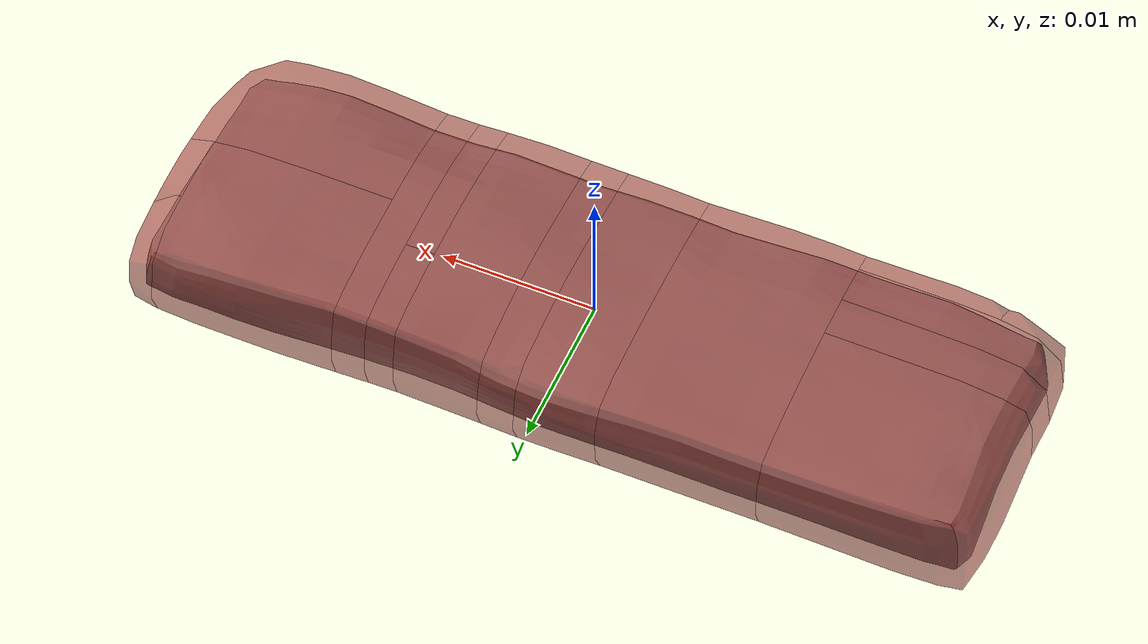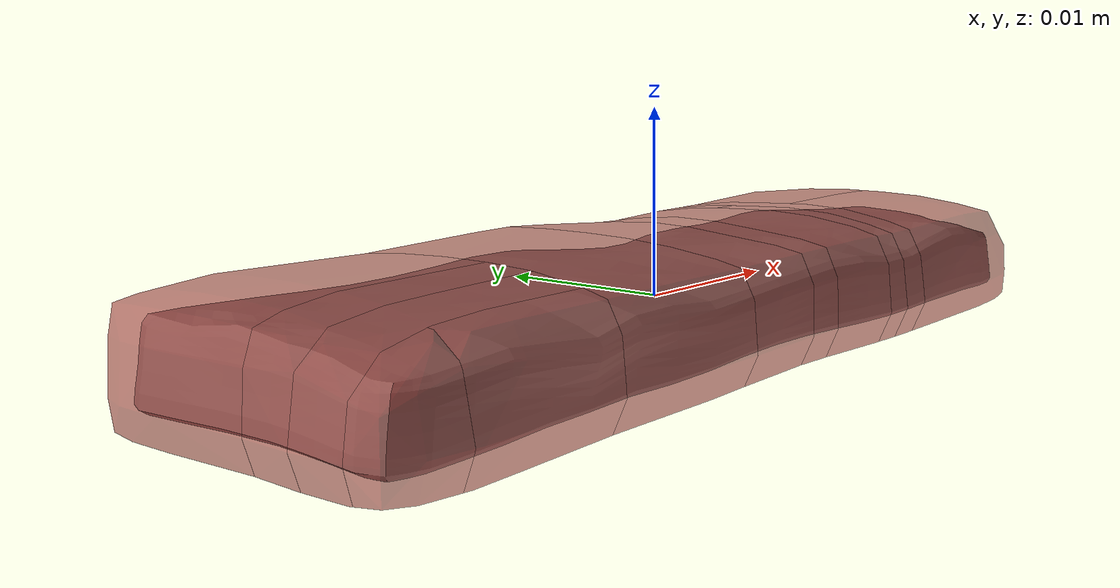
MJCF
<mujoco model="model">
  <compiler angle="radian"/>
  <asset>
    <mesh file="visual/CreamCheese007.obj" name="CreamCheese007_vis"/>
    <texture file="visual/T_BC001.png" name="CreamCheese007_material" type="2d"/>
    <material name="CreamCheese007_material" rgba="1 1 1 1.0" texture="CreamCheese007_material" shininess="-35.000003814697266" specular="0.3103448502657381"/>
    <mesh file="collision/CreamCheese007003.obj" name="CreamCheese007003_mesh"/>
    <mesh file="collision/CreamCheese007008.obj" name="CreamCheese007008_mesh"/>
    <mesh file="collision/CreamCheese007013.obj" name="CreamCheese007013_mesh"/>
    <mesh file="collision/CreamCheese007009.obj" name="CreamCheese007009_mesh"/>
    <mesh file="collision/CreamCheese007014.obj" name="CreamCheese007014_mesh"/>
    <mesh file="collision/CreamCheese007015.obj" name="CreamCheese007015_mesh"/>
    <mesh file="collision/CreamCheese007004.obj" name="CreamCheese007004_mesh"/>
    <mesh file="collision/CreamCheese007001.obj" name="CreamCheese007001_mesh"/>
    <mesh file="collision/CreamCheese007007.obj" name="CreamCheese007007_mesh"/>
    <mesh file="collision/CreamCheese007002.obj" name="CreamCheese007002_mesh"/>
    <mesh file="collision/CreamCheese007012.obj" name="CreamCheese007012_mesh"/>
    <mesh file="collision/CreamCheese007016.obj" name="CreamCheese007016_mesh"/>
    <mesh file="collision/CreamCheese007005.obj" name="CreamCheese007005_mesh"/>
    <mesh file="collision/CreamCheese007006.obj" name="CreamCheese007006_mesh"/>
    <mesh file="collision/CreamCheese007010.obj" name="CreamCheese007010_mesh"/>
    <mesh file="collision/CreamCheese007011.obj" name="CreamCheese007011_mesh"/>
  </asset>
  <default>
    <default class="visual">
      <geom conaffinity="0" contype="0" group="1" type="mesh"/>
    </default>
    <default class="collision">
      <geom group="0" rgba="0.5 0 0 0.5"/>
    </default>
    <default class="spawn">
      <geom group="0" rgba="1 1 1 0.5" contype="0" conaffinity="0"/>
      <site group="0" rgba="1 1 1 0.5"/>
    </default>
    <default class="region">
      <geom group="1" conaffinity="0" contype="0" rgba="0 1 0 0" mass="0"/>
    </default>
  </default>
  <worldbody>
    <body>
      <body name="object">
        <geom mesh="CreamCheese007_vis" type="mesh" solimp="0.998 0.998 0.001" solref="0.001 1" density="100" friction="0.95 0.3 0.1" class="visual" material="CreamCheese007_material"/>
        <geom mesh="CreamCheese007003_mesh" type="mesh" class="collision"/>
        <geom mesh="CreamCheese007008_mesh" type="mesh" class="collision"/>
        <geom mesh="CreamCheese007013_mesh" type="mesh" class="collision"/>
        <geom mesh="CreamCheese007009_mesh" type="mesh" class="collision"/>
        <geom mesh="CreamCheese007014_mesh" type="mesh" class="collision"/>
        <geom mesh="CreamCheese007015_mesh" type="mesh" class="collision"/>
        <geom mesh="CreamCheese007004_mesh" type="mesh" class="collision"/>
        <geom mesh="CreamCheese007001_mesh" type="mesh" class="collision"/>
        <geom mesh="CreamCheese007007_mesh" type="mesh" class="collision"/>
        <geom mesh="CreamCheese007002_mesh" type="mesh" class="collision"/>
        <geom mesh="CreamCheese007012_mesh" type="mesh" class="collision"/>
        <geom mesh="CreamCheese007016_mesh" type="mesh" class="collision"/>
        <geom mesh="CreamCheese007005_mesh" type="mesh" class="collision"/>
        <geom mesh="CreamCheese007006_mesh" type="mesh" class="collision"/>
        <geom mesh="CreamCheese007010_mesh" type="mesh" class="collision"/>
        <geom mesh="CreamCheese007011_mesh" type="mesh" class="collision"/>
        <geom class="region" name="reg_bbox" type="box" pos="-1.2210000000000346e-05 1.9954999999999452e-05 3.86099999999999e-05" size="0.027724520000000002 0.009332315 0.00374913"/>
      </body>
    </body>
  </worldbody>
  <actuator/>
</mujoco>
